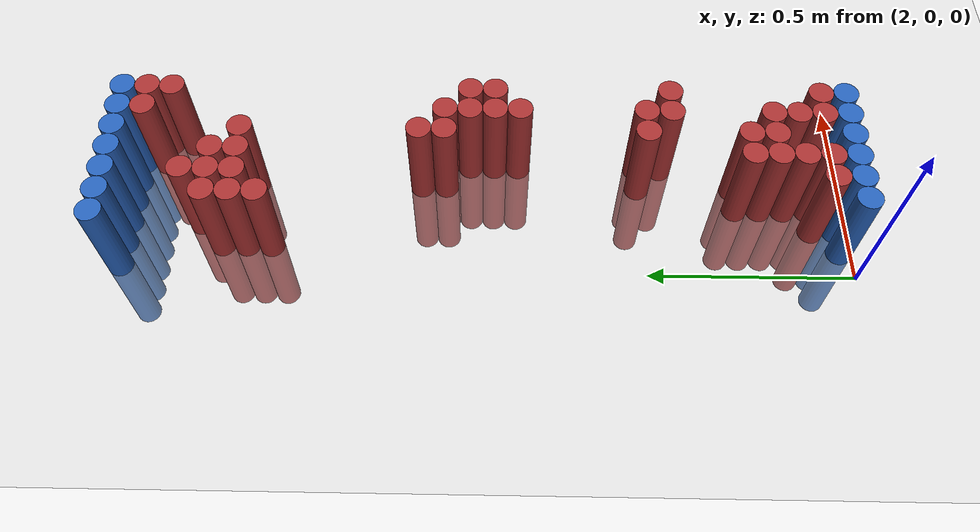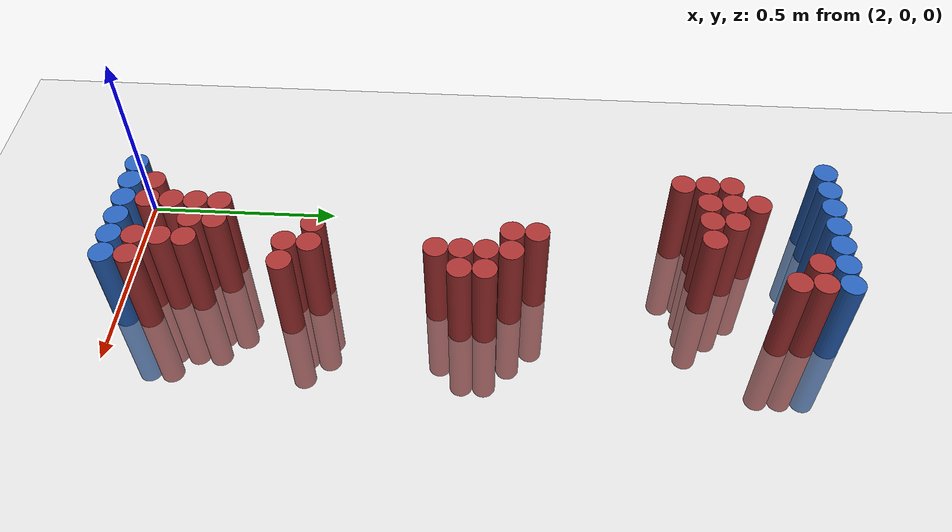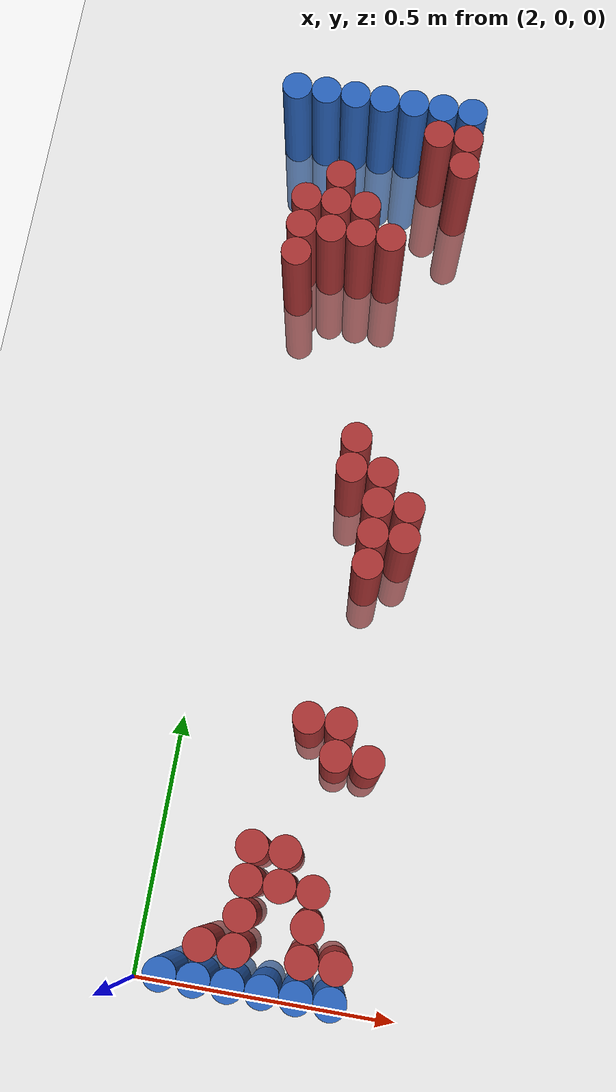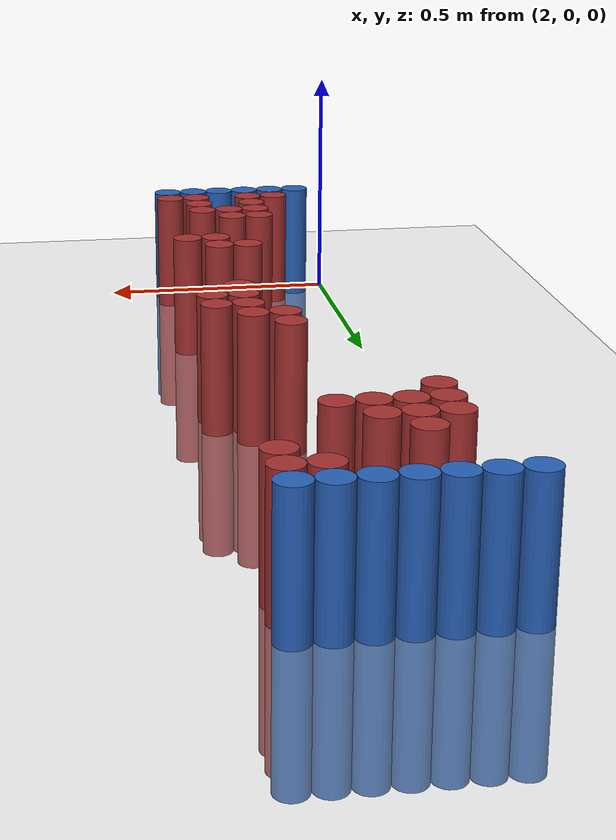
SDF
<sdf version="1.6">
 <world name="default">
  <model name="ground_plane">
   <static>1</static>
   <link name="link">
    <collision name="collision">
     <geometry><plane><normal>0 0 1</normal><size>100 100</size></plane></geometry>
     <surface><friction><ode><mu>100</mu><mu2>50</mu2></ode></friction></surface>
    </collision>
    <visual name="visual">
     <cast_shadows>0</cast_shadows>
     <geometry><plane><normal>0 0 1</normal><size>100 100</size></plane></geometry>
     <material>
      <script><uri>file://media/materials/scripts/gazebo.material</uri><name>Gazebo/Grey</name></script>
     </material>
    </visual>
   </link>
  </model>
  <model name="unit_cylinder_94">
   <static>1</static>
   <pose>2.010000 1.770000 0.000000 0.000000 0.000000 0.000000</pose>
   <link name="link">
    <inertial>
     <mass>1</mass>
     <inertia><ixx>0.145833</ixx><ixy>0</ixy><ixz>0</ixz><iyy>0.145833</iyy><iyz>0</iyz><izz>0.125</izz></inertia>
    </inertial>
    <collision name="collision">
     <geometry><cylinder><radius>0.030000</radius><length>0.5</length></cylinder></geometry>
    </collision>
    <visual name="visual">
     <geometry><cylinder><radius>0.030000</radius><length>0.5</length></cylinder></geometry>
     <material>
      <ambient>0.152000 0.379000 0.720000 1</ambient>
      <diffuse>0.152000 0.379000 0.720000 1</diffuse>
     </material>
     <material>
      <script><name>Gazebo/Grey</name><uri>file://media/materials/scripts/gazebo.material</uri></script>
     </material>
    </visual>
   </link>
  </model>
  <model name="unit_cylinder_95">
   <static>1</static>
   <pose>2.070000 1.770000 0.000000 0.000000 0.000000 0.000000</pose>
   <link name="link">
    <inertial>
     <mass>1</mass>
     <inertia><ixx>0.145833</ixx><ixy>0</ixy><ixz>0</ixz><iyy>0.145833</iyy><iyz>0</iyz><izz>0.125</izz></inertia>
    </inertial>
    <collision name="collision">
     <geometry><cylinder><radius>0.030000</radius><length>0.5</length></cylinder></geometry>
    </collision>
    <visual name="visual">
     <geometry><cylinder><radius>0.030000</radius><length>0.5</length></cylinder></geometry>
     <material>
      <ambient>0.152000 0.379000 0.720000 1</ambient>
      <diffuse>0.152000 0.379000 0.720000 1</diffuse>
     </material>
     <material>
      <script><name>Gazebo/Grey</name><uri>file://media/materials/scripts/gazebo.material</uri></script>
     </material>
    </visual>
   </link>
  </model>
  <model name="unit_cylinder_96">
   <static>1</static>
   <pose>2.130000 1.770000 0.000000 0.000000 0.000000 0.000000</pose>
   <link name="link">
    <inertial>
     <mass>1</mass>
     <inertia><ixx>0.145833</ixx><ixy>0</ixy><ixz>0</ixz><iyy>0.145833</iyy><iyz>0</iyz><izz>0.125</izz></inertia>
    </inertial>
    <collision name="collision">
     <geometry><cylinder><radius>0.030000</radius><length>0.5</length></cylinder></geometry>
    </collision>
    <visual name="visual">
     <geometry><cylinder><radius>0.030000</radius><length>0.5</length></cylinder></geometry>
     <material>
      <ambient>0.152000 0.379000 0.720000 1</ambient>
      <diffuse>0.152000 0.379000 0.720000 1</diffuse>
     </material>
     <material>
      <script><name>Gazebo/Grey</name><uri>file://media/materials/scripts/gazebo.material</uri></script>
     </material>
    </visual>
   </link>
  </model>
  <model name="unit_cylinder_97">
   <static>1</static>
   <pose>2.190000 1.770000 0.000000 0.000000 0.000000 0.000000</pose>
   <link name="link">
    <inertial>
     <mass>1</mass>
     <inertia><ixx>0.145833</ixx><ixy>0</ixy><ixz>0</ixz><iyy>0.145833</iyy><iyz>0</iyz><izz>0.125</izz></inertia>
    </inertial>
    <collision name="collision">
     <geometry><cylinder><radius>0.030000</radius><length>0.5</length></cylinder></geometry>
    </collision>
    <visual name="visual">
     <geometry><cylinder><radius>0.030000</radius><length>0.5</length></cylinder></geometry>
     <material>
      <ambient>0.152000 0.379000 0.720000 1</ambient>
      <diffuse>0.152000 0.379000 0.720000 1</diffuse>
     </material>
     <material>
      <script><name>Gazebo/Grey</name><uri>file://media/materials/scripts/gazebo.material</uri></script>
     </material>
    </visual>
   </link>
  </model>
  <model name="unit_cylinder_98">
   <static>1</static>
   <pose>2.250000 1.770000 0.000000 0.000000 0.000000 0.000000</pose>
   <link name="link">
    <inertial>
     <mass>1</mass>
     <inertia><ixx>0.145833</ixx><ixy>0</ixy><ixz>0</ixz><iyy>0.145833</iyy><iyz>0</iyz><izz>0.125</izz></inertia>
    </inertial>
    <collision name="collision">
     <geometry><cylinder><radius>0.030000</radius><length>0.5</length></cylinder></geometry>
    </collision>
    <visual name="visual">
     <geometry><cylinder><radius>0.030000</radius><length>0.5</length></cylinder></geometry>
     <material>
      <ambient>0.152000 0.379000 0.720000 1</ambient>
      <diffuse>0.152000 0.379000 0.720000 1</diffuse>
     </material>
     <material>
      <script><name>Gazebo/Grey</name><uri>file://media/materials/scripts/gazebo.material</uri></script>
     </material>
    </visual>
   </link>
  </model>
  <model name="unit_cylinder_99">
   <static>1</static>
   <pose>2.310000 1.770000 0.000000 0.000000 0.000000 0.000000</pose>
   <link name="link">
    <inertial>
     <mass>1</mass>
     <inertia><ixx>0.145833</ixx><ixy>0</ixy><ixz>0</ixz><iyy>0.145833</iyy><iyz>0</iyz><izz>0.125</izz></inertia>
    </inertial>
    <collision name="collision">
     <geometry><cylinder><radius>0.030000</radius><length>0.5</length></cylinder></geometry>
    </collision>
    <visual name="visual">
     <geometry><cylinder><radius>0.030000</radius><length>0.5</length></cylinder></geometry>
     <material>
      <ambient>0.152000 0.379000 0.720000 1</ambient>
      <diffuse>0.152000 0.379000 0.720000 1</diffuse>
     </material>
     <material>
      <script><name>Gazebo/Grey</name><uri>file://media/materials/scripts/gazebo.material</uri></script>
     </material>
    </visual>
   </link>
  </model>
  <model name="unit_cylinder_100">
   <static>1</static>
   <pose>2.370000 1.770000 0.000000 0.000000 0.000000 0.000000</pose>
   <link name="link">
    <inertial>
     <mass>1</mass>
     <inertia><ixx>0.145833</ixx><ixy>0</ixy><ixz>0</ixz><iyy>0.145833</iyy><iyz>0</iyz><izz>0.125</izz></inertia>
    </inertial>
    <collision name="collision">
     <geometry><cylinder><radius>0.030000</radius><length>0.5</length></cylinder></geometry>
    </collision>
    <visual name="visual">
     <geometry><cylinder><radius>0.030000</radius><length>0.5</length></cylinder></geometry>
     <material>
      <ambient>0.152000 0.379000 0.720000 1</ambient>
      <diffuse>0.152000 0.379000 0.720000 1</diffuse>
     </material>
     <material>
      <script><name>Gazebo/Grey</name><uri>file://media/materials/scripts/gazebo.material</uri></script>
     </material>
    </visual>
   </link>
  </model>
  <model name="unit_cylinder_125">
   <static>1</static>
   <pose>2.310000 1.710000 0.000000 0.000000 0.000000 0.000000</pose>
   <link name="link">
    <inertial>
     <mass>1</mass>
     <inertia><ixx>0.145833</ixx><ixy>0</ixy><ixz>0</ixz><iyy>0.145833</iyy><iyz>0</iyz><izz>0.125</izz></inertia>
    </inertial>
    <collision name="collision">
     <geometry><cylinder><radius>0.030000</radius><length>0.5</length></cylinder></geometry>
    </collision>
    <visual name="visual">
     <geometry><cylinder><radius>0.030000</radius><length>0.5</length></cylinder></geometry>
     <material>
      <ambient>0.648000 0.192000 0.192000 1</ambient>
      <diffuse>0.648000 0.192000 0.192000 1</diffuse>
     </material>
     <material>
      <script><name>Gazebo/Grey</name><uri>file://media/materials/scripts/gazebo.material</uri></script>
     </material>
    </visual>
   </link>
  </model>
  <model name="unit_cylinder_126">
   <static>1</static>
   <pose>2.370000 1.710000 0.000000 0.000000 0.000000 0.000000</pose>
   <link name="link">
    <inertial>
     <mass>1</mass>
     <inertia><ixx>0.145833</ixx><ixy>0</ixy><ixz>0</ixz><iyy>0.145833</iyy><iyz>0</iyz><izz>0.125</izz></inertia>
    </inertial>
    <collision name="collision">
     <geometry><cylinder><radius>0.030000</radius><length>0.5</length></cylinder></geometry>
    </collision>
    <visual name="visual">
     <geometry><cylinder><radius>0.030000</radius><length>0.5</length></cylinder></geometry>
     <material>
      <ambient>0.648000 0.192000 0.192000 1</ambient>
      <diffuse>0.648000 0.192000 0.192000 1</diffuse>
     </material>
     <material>
      <script><name>Gazebo/Grey</name><uri>file://media/materials/scripts/gazebo.material</uri></script>
     </material>
    </visual>
   </link>
  </model>
  <model name="unit_cylinder_137">
   <static>1</static>
   <pose>2.370000 1.650000 0.000000 0.000000 0.000000 0.000000</pose>
   <link name="link">
    <inertial>
     <mass>1</mass>
     <inertia><ixx>0.145833</ixx><ixy>0</ixy><ixz>0</ixz><iyy>0.145833</iyy><iyz>0</iyz><izz>0.125</izz></inertia>
    </inertial>
    <collision name="collision">
     <geometry><cylinder><radius>0.030000</radius><length>0.5</length></cylinder></geometry>
    </collision>
    <visual name="visual">
     <geometry><cylinder><radius>0.030000</radius><length>0.5</length></cylinder></geometry>
     <material>
      <ambient>0.648000 0.192000 0.192000 1</ambient>
      <diffuse>0.648000 0.192000 0.192000 1</diffuse>
     </material>
     <material>
      <script><name>Gazebo/Grey</name><uri>file://media/materials/scripts/gazebo.material</uri></script>
     </material>
    </visual>
   </link>
  </model>
  <model name="unit_cylinder_145">
   <static>1</static>
   <pose>2.130000 1.590000 0.000000 0.000000 0.000000 0.000000</pose>
   <link name="link">
    <inertial>
     <mass>1</mass>
     <inertia><ixx>0.145833</ixx><ixy>0</ixy><ixz>0</ixz><iyy>0.145833</iyy><iyz>0</iyz><izz>0.125</izz></inertia>
    </inertial>
    <collision name="collision">
     <geometry><cylinder><radius>0.030000</radius><length>0.5</length></cylinder></geometry>
    </collision>
    <visual name="visual">
     <geometry><cylinder><radius>0.030000</radius><length>0.5</length></cylinder></geometry>
     <material>
      <ambient>0.648000 0.192000 0.192000 1</ambient>
      <diffuse>0.648000 0.192000 0.192000 1</diffuse>
     </material>
     <material>
      <script><name>Gazebo/Grey</name><uri>file://media/materials/scripts/gazebo.material</uri></script>
     </material>
    </visual>
   </link>
  </model>
  <model name="unit_cylinder_159">
   <static>1</static>
   <pose>2.070000 1.530000 0.000000 0.000000 0.000000 0.000000</pose>
   <link name="link">
    <inertial>
     <mass>1</mass>
     <inertia><ixx>0.145833</ixx><ixy>0</ixy><ixz>0</ixz><iyy>0.145833</iyy><iyz>0</iyz><izz>0.125</izz></inertia>
    </inertial>
    <collision name="collision">
     <geometry><cylinder><radius>0.030000</radius><length>0.5</length></cylinder></geometry>
    </collision>
    <visual name="visual">
     <geometry><cylinder><radius>0.030000</radius><length>0.5</length></cylinder></geometry>
     <material>
      <ambient>0.648000 0.192000 0.192000 1</ambient>
      <diffuse>0.648000 0.192000 0.192000 1</diffuse>
     </material>
     <material>
      <script><name>Gazebo/Grey</name><uri>file://media/materials/scripts/gazebo.material</uri></script>
     </material>
    </visual>
   </link>
  </model>
  <model name="unit_cylinder_160">
   <static>1</static>
   <pose>2.130000 1.530000 0.000000 0.000000 0.000000 0.000000</pose>
   <link name="link">
    <inertial>
     <mass>1</mass>
     <inertia><ixx>0.145833</ixx><ixy>0</ixy><ixz>0</ixz><iyy>0.145833</iyy><iyz>0</iyz><izz>0.125</izz></inertia>
    </inertial>
    <collision name="collision">
     <geometry><cylinder><radius>0.030000</radius><length>0.5</length></cylinder></geometry>
    </collision>
    <visual name="visual">
     <geometry><cylinder><radius>0.030000</radius><length>0.5</length></cylinder></geometry>
     <material>
      <ambient>0.648000 0.192000 0.192000 1</ambient>
      <diffuse>0.648000 0.192000 0.192000 1</diffuse>
     </material>
     <material>
      <script><name>Gazebo/Grey</name><uri>file://media/materials/scripts/gazebo.material</uri></script>
     </material>
    </visual>
   </link>
  </model>
  <model name="unit_cylinder_161">
   <static>1</static>
   <pose>2.190000 1.530000 0.000000 0.000000 0.000000 0.000000</pose>
   <link name="link">
    <inertial>
     <mass>1</mass>
     <inertia><ixx>0.145833</ixx><ixy>0</ixy><ixz>0</ixz><iyy>0.145833</iyy><iyz>0</iyz><izz>0.125</izz></inertia>
    </inertial>
    <collision name="collision">
     <geometry><cylinder><radius>0.030000</radius><length>0.5</length></cylinder></geometry>
    </collision>
    <visual name="visual">
     <geometry><cylinder><radius>0.030000</radius><length>0.5</length></cylinder></geometry>
     <material>
      <ambient>0.648000 0.192000 0.192000 1</ambient>
      <diffuse>0.648000 0.192000 0.192000 1</diffuse>
     </material>
     <material>
      <script><name>Gazebo/Grey</name><uri>file://media/materials/scripts/gazebo.material</uri></script>
     </material>
    </visual>
   </link>
  </model>
  <model name="unit_cylinder_167">
   <static>1</static>
   <pose>2.070000 1.470000 0.000000 0.000000 0.000000 0.000000</pose>
   <link name="link">
    <inertial>
     <mass>1</mass>
     <inertia><ixx>0.145833</ixx><ixy>0</ixy><ixz>0</ixz><iyy>0.145833</iyy><iyz>0</iyz><izz>0.125</izz></inertia>
    </inertial>
    <collision name="collision">
     <geometry><cylinder><radius>0.030000</radius><length>0.5</length></cylinder></geometry>
    </collision>
    <visual name="visual">
     <geometry><cylinder><radius>0.030000</radius><length>0.5</length></cylinder></geometry>
     <material>
      <ambient>0.648000 0.192000 0.192000 1</ambient>
      <diffuse>0.648000 0.192000 0.192000 1</diffuse>
     </material>
     <material>
      <script><name>Gazebo/Grey</name><uri>file://media/materials/scripts/gazebo.material</uri></script>
     </material>
    </visual>
   </link>
  </model>
  <model name="unit_cylinder_168">
   <static>1</static>
   <pose>2.130000 1.470000 0.000000 0.000000 0.000000 0.000000</pose>
   <link name="link">
    <inertial>
     <mass>1</mass>
     <inertia><ixx>0.145833</ixx><ixy>0</ixy><ixz>0</ixz><iyy>0.145833</iyy><iyz>0</iyz><izz>0.125</izz></inertia>
    </inertial>
    <collision name="collision">
     <geometry><cylinder><radius>0.030000</radius><length>0.5</length></cylinder></geometry>
    </collision>
    <visual name="visual">
     <geometry><cylinder><radius>0.030000</radius><length>0.5</length></cylinder></geometry>
     <material>
      <ambient>0.648000 0.192000 0.192000 1</ambient>
      <diffuse>0.648000 0.192000 0.192000 1</diffuse>
     </material>
     <material>
      <script><name>Gazebo/Grey</name><uri>file://media/materials/scripts/gazebo.material</uri></script>
     </material>
    </visual>
   </link>
  </model>
  <model name="unit_cylinder_169">
   <static>1</static>
   <pose>2.190000 1.470000 0.000000 0.000000 0.000000 0.000000</pose>
   <link name="link">
    <inertial>
     <mass>1</mass>
     <inertia><ixx>0.145833</ixx><ixy>0</ixy><ixz>0</ixz><iyy>0.145833</iyy><iyz>0</iyz><izz>0.125</izz></inertia>
    </inertial>
    <collision name="collision">
     <geometry><cylinder><radius>0.030000</radius><length>0.5</length></cylinder></geometry>
    </collision>
    <visual name="visual">
     <geometry><cylinder><radius>0.030000</radius><length>0.5</length></cylinder></geometry>
     <material>
      <ambient>0.648000 0.192000 0.192000 1</ambient>
      <diffuse>0.648000 0.192000 0.192000 1</diffuse>
     </material>
     <material>
      <script><name>Gazebo/Grey</name><uri>file://media/materials/scripts/gazebo.material</uri></script>
     </material>
    </visual>
   </link>
  </model>
  <model name="unit_cylinder_170">
   <static>1</static>
   <pose>2.250000 1.470000 0.000000 0.000000 0.000000 0.000000</pose>
   <link name="link">
    <inertial>
     <mass>1</mass>
     <inertia><ixx>0.145833</ixx><ixy>0</ixy><ixz>0</ixz><iyy>0.145833</iyy><iyz>0</iyz><izz>0.125</izz></inertia>
    </inertial>
    <collision name="collision">
     <geometry><cylinder><radius>0.030000</radius><length>0.5</length></cylinder></geometry>
    </collision>
    <visual name="visual">
     <geometry><cylinder><radius>0.030000</radius><length>0.5</length></cylinder></geometry>
     <material>
      <ambient>0.648000 0.192000 0.192000 1</ambient>
      <diffuse>0.648000 0.192000 0.192000 1</diffuse>
     </material>
     <material>
      <script><name>Gazebo/Grey</name><uri>file://media/materials/scripts/gazebo.material</uri></script>
     </material>
    </visual>
   </link>
  </model>
  <model name="unit_cylinder_174">
   <static>1</static>
   <pose>2.070000 1.410000 0.000000 0.000000 0.000000 0.000000</pose>
   <link name="link">
    <inertial>
     <mass>1</mass>
     <inertia><ixx>0.145833</ixx><ixy>0</ixy><ixz>0</ixz><iyy>0.145833</iyy><iyz>0</iyz><izz>0.125</izz></inertia>
    </inertial>
    <collision name="collision">
     <geometry><cylinder><radius>0.030000</radius><length>0.5</length></cylinder></geometry>
    </collision>
    <visual name="visual">
     <geometry><cylinder><radius>0.030000</radius><length>0.5</length></cylinder></geometry>
     <material>
      <ambient>0.648000 0.192000 0.192000 1</ambient>
      <diffuse>0.648000 0.192000 0.192000 1</diffuse>
     </material>
     <material>
      <script><name>Gazebo/Grey</name><uri>file://media/materials/scripts/gazebo.material</uri></script>
     </material>
    </visual>
   </link>
  </model>
  <model name="unit_cylinder_193">
   <static>1</static>
   <pose>2.250000 1.050000 0.000000 0.000000 0.000000 0.000000</pose>
   <link name="link">
    <inertial>
     <mass>1</mass>
     <inertia><ixx>0.145833</ixx><ixy>0</ixy><ixz>0</ixz><iyy>0.145833</iyy><iyz>0</iyz><izz>0.125</izz></inertia>
    </inertial>
    <collision name="collision">
     <geometry><cylinder><radius>0.030000</radius><length>0.5</length></cylinder></geometry>
    </collision>
    <visual name="visual">
     <geometry><cylinder><radius>0.030000</radius><length>0.5</length></cylinder></geometry>
     <material>
      <ambient>0.648000 0.192000 0.192000 1</ambient>
      <diffuse>0.648000 0.192000 0.192000 1</diffuse>
     </material>
     <material>
      <script><name>Gazebo/Grey</name><uri>file://media/materials/scripts/gazebo.material</uri></script>
     </material>
    </visual>
   </link>
  </model>
  <model name="unit_cylinder_196">
   <static>1</static>
   <pose>2.250000 0.990000 0.000000 0.000000 0.000000 0.000000</pose>
   <link name="link">
    <inertial>
     <mass>1</mass>
     <inertia><ixx>0.145833</ixx><ixy>0</ixy><ixz>0</ixz><iyy>0.145833</iyy><iyz>0</iyz><izz>0.125</izz></inertia>
    </inertial>
    <collision name="collision">
     <geometry><cylinder><radius>0.030000</radius><length>0.5</length></cylinder></geometry>
    </collision>
    <visual name="visual">
     <geometry><cylinder><radius>0.030000</radius><length>0.5</length></cylinder></geometry>
     <material>
      <ambient>0.648000 0.192000 0.192000 1</ambient>
      <diffuse>0.648000 0.192000 0.192000 1</diffuse>
     </material>
     <material>
      <script><name>Gazebo/Grey</name><uri>file://media/materials/scripts/gazebo.material</uri></script>
     </material>
    </visual>
   </link>
  </model>
  <model name="unit_cylinder_197">
   <static>1</static>
   <pose>2.310000 0.990000 0.000000 0.000000 0.000000 0.000000</pose>
   <link name="link">
    <inertial>
     <mass>1</mass>
     <inertia><ixx>0.145833</ixx><ixy>0</ixy><ixz>0</ixz><iyy>0.145833</iyy><iyz>0</iyz><izz>0.125</izz></inertia>
    </inertial>
    <collision name="collision">
     <geometry><cylinder><radius>0.030000</radius><length>0.5</length></cylinder></geometry>
    </collision>
    <visual name="visual">
     <geometry><cylinder><radius>0.030000</radius><length>0.5</length></cylinder></geometry>
     <material>
      <ambient>0.648000 0.192000 0.192000 1</ambient>
      <diffuse>0.648000 0.192000 0.192000 1</diffuse>
     </material>
     <material>
      <script><name>Gazebo/Grey</name><uri>file://media/materials/scripts/gazebo.material</uri></script>
     </material>
    </visual>
   </link>
  </model>
  <model name="unit_cylinder_202">
   <static>1</static>
   <pose>2.310000 0.930000 0.000000 0.000000 0.000000 0.000000</pose>
   <link name="link">
    <inertial>
     <mass>1</mass>
     <inertia><ixx>0.145833</ixx><ixy>0</ixy><ixz>0</ixz><iyy>0.145833</iyy><iyz>0</iyz><izz>0.125</izz></inertia>
    </inertial>
    <collision name="collision">
     <geometry><cylinder><radius>0.030000</radius><length>0.5</length></cylinder></geometry>
    </collision>
    <visual name="visual">
     <geometry><cylinder><radius>0.030000</radius><length>0.5</length></cylinder></geometry>
     <material>
      <ambient>0.648000 0.192000 0.192000 1</ambient>
      <diffuse>0.648000 0.192000 0.192000 1</diffuse>
     </material>
     <material>
      <script><name>Gazebo/Grey</name><uri>file://media/materials/scripts/gazebo.material</uri></script>
     </material>
    </visual>
   </link>
  </model>
  <model name="unit_cylinder_203">
   <static>1</static>
   <pose>2.370000 0.930000 0.000000 0.000000 0.000000 0.000000</pose>
   <link name="link">
    <inertial>
     <mass>1</mass>
     <inertia><ixx>0.145833</ixx><ixy>0</ixy><ixz>0</ixz><iyy>0.145833</iyy><iyz>0</iyz><izz>0.125</izz></inertia>
    </inertial>
    <collision name="collision">
     <geometry><cylinder><radius>0.030000</radius><length>0.5</length></cylinder></geometry>
    </collision>
    <visual name="visual">
     <geometry><cylinder><radius>0.030000</radius><length>0.5</length></cylinder></geometry>
     <material>
      <ambient>0.648000 0.192000 0.192000 1</ambient>
      <diffuse>0.648000 0.192000 0.192000 1</diffuse>
     </material>
     <material>
      <script><name>Gazebo/Grey</name><uri>file://media/materials/scripts/gazebo.material</uri></script>
     </material>
    </visual>
   </link>
  </model>
  <model name="unit_cylinder_208">
   <static>1</static>
   <pose>2.310000 0.870000 0.000000 0.000000 0.000000 0.000000</pose>
   <link name="link">
    <inertial>
     <mass>1</mass>
     <inertia><ixx>0.145833</ixx><ixy>0</ixy><ixz>0</ixz><iyy>0.145833</iyy><iyz>0</iyz><izz>0.125</izz></inertia>
    </inertial>
    <collision name="collision">
     <geometry><cylinder><radius>0.030000</radius><length>0.5</length></cylinder></geometry>
    </collision>
    <visual name="visual">
     <geometry><cylinder><radius>0.030000</radius><length>0.5</length></cylinder></geometry>
     <material>
      <ambient>0.648000 0.192000 0.192000 1</ambient>
      <diffuse>0.648000 0.192000 0.192000 1</diffuse>
     </material>
     <material>
      <script><name>Gazebo/Grey</name><uri>file://media/materials/scripts/gazebo.material</uri></script>
     </material>
    </visual>
   </link>
  </model>
  <model name="unit_cylinder_209">
   <static>1</static>
   <pose>2.370000 0.870000 0.000000 0.000000 0.000000 0.000000</pose>
   <link name="link">
    <inertial>
     <mass>1</mass>
     <inertia><ixx>0.145833</ixx><ixy>0</ixy><ixz>0</ixz><iyy>0.145833</iyy><iyz>0</iyz><izz>0.125</izz></inertia>
    </inertial>
    <collision name="collision">
     <geometry><cylinder><radius>0.030000</radius><length>0.5</length></cylinder></geometry>
    </collision>
    <visual name="visual">
     <geometry><cylinder><radius>0.030000</radius><length>0.5</length></cylinder></geometry>
     <material>
      <ambient>0.648000 0.192000 0.192000 1</ambient>
      <diffuse>0.648000 0.192000 0.192000 1</diffuse>
     </material>
     <material>
      <script><name>Gazebo/Grey</name><uri>file://media/materials/scripts/gazebo.material</uri></script>
     </material>
    </visual>
   </link>
  </model>
  <model name="unit_cylinder_215">
   <static>1</static>
   <pose>2.310000 0.810000 0.000000 0.000000 0.000000 0.000000</pose>
   <link name="link">
    <inertial>
     <mass>1</mass>
     <inertia><ixx>0.145833</ixx><ixy>0</ixy><ixz>0</ixz><iyy>0.145833</iyy><iyz>0</iyz><izz>0.125</izz></inertia>
    </inertial>
    <collision name="collision">
     <geometry><cylinder><radius>0.030000</radius><length>0.5</length></cylinder></geometry>
    </collision>
    <visual name="visual">
     <geometry><cylinder><radius>0.030000</radius><length>0.5</length></cylinder></geometry>
     <material>
      <ambient>0.648000 0.192000 0.192000 1</ambient>
      <diffuse>0.648000 0.192000 0.192000 1</diffuse>
     </material>
     <material>
      <script><name>Gazebo/Grey</name><uri>file://media/materials/scripts/gazebo.material</uri></script>
     </material>
    </visual>
   </link>
  </model>
  <model name="unit_cylinder_250">
   <static>1</static>
   <pose>2.250000 0.510000 0.000000 0.000000 0.000000 0.000000</pose>
   <link name="link">
    <inertial>
     <mass>1</mass>
     <inertia><ixx>0.145833</ixx><ixy>0</ixy><ixz>0</ixz><iyy>0.145833</iyy><iyz>0</iyz><izz>0.125</izz></inertia>
    </inertial>
    <collision name="collision">
     <geometry><cylinder><radius>0.030000</radius><length>0.5</length></cylinder></geometry>
    </collision>
    <visual name="visual">
     <geometry><cylinder><radius>0.030000</radius><length>0.5</length></cylinder></geometry>
     <material>
      <ambient>0.648000 0.192000 0.192000 1</ambient>
      <diffuse>0.648000 0.192000 0.192000 1</diffuse>
     </material>
     <material>
      <script><name>Gazebo/Grey</name><uri>file://media/materials/scripts/gazebo.material</uri></script>
     </material>
    </visual>
   </link>
  </model>
  <model name="unit_cylinder_251">
   <static>1</static>
   <pose>2.310000 0.510000 0.000000 0.000000 0.000000 0.000000</pose>
   <link name="link">
    <inertial>
     <mass>1</mass>
     <inertia><ixx>0.145833</ixx><ixy>0</ixy><ixz>0</ixz><iyy>0.145833</iyy><iyz>0</iyz><izz>0.125</izz></inertia>
    </inertial>
    <collision name="collision">
     <geometry><cylinder><radius>0.030000</radius><length>0.5</length></cylinder></geometry>
    </collision>
    <visual name="visual">
     <geometry><cylinder><radius>0.030000</radius><length>0.5</length></cylinder></geometry>
     <material>
      <ambient>0.648000 0.192000 0.192000 1</ambient>
      <diffuse>0.648000 0.192000 0.192000 1</diffuse>
     </material>
     <material>
      <script><name>Gazebo/Grey</name><uri>file://media/materials/scripts/gazebo.material</uri></script>
     </material>
    </visual>
   </link>
  </model>
  <model name="unit_cylinder_253">
   <static>1</static>
   <pose>2.310000 0.450000 0.000000 0.000000 0.000000 0.000000</pose>
   <link name="link">
    <inertial>
     <mass>1</mass>
     <inertia><ixx>0.145833</ixx><ixy>0</ixy><ixz>0</ixz><iyy>0.145833</iyy><iyz>0</iyz><izz>0.125</izz></inertia>
    </inertial>
    <collision name="collision">
     <geometry><cylinder><radius>0.030000</radius><length>0.5</length></cylinder></geometry>
    </collision>
    <visual name="visual">
     <geometry><cylinder><radius>0.030000</radius><length>0.5</length></cylinder></geometry>
     <material>
      <ambient>0.648000 0.192000 0.192000 1</ambient>
      <diffuse>0.648000 0.192000 0.192000 1</diffuse>
     </material>
     <material>
      <script><name>Gazebo/Grey</name><uri>file://media/materials/scripts/gazebo.material</uri></script>
     </material>
    </visual>
   </link>
  </model>
  <model name="unit_cylinder_254">
   <static>1</static>
   <pose>2.370000 0.450000 0.000000 0.000000 0.000000 0.000000</pose>
   <link name="link">
    <inertial>
     <mass>1</mass>
     <inertia><ixx>0.145833</ixx><ixy>0</ixy><ixz>0</ixz><iyy>0.145833</iyy><iyz>0</iyz><izz>0.125</izz></inertia>
    </inertial>
    <collision name="collision">
     <geometry><cylinder><radius>0.030000</radius><length>0.5</length></cylinder></geometry>
    </collision>
    <visual name="visual">
     <geometry><cylinder><radius>0.030000</radius><length>0.5</length></cylinder></geometry>
     <material>
      <ambient>0.648000 0.192000 0.192000 1</ambient>
      <diffuse>0.648000 0.192000 0.192000 1</diffuse>
     </material>
     <material>
      <script><name>Gazebo/Grey</name><uri>file://media/materials/scripts/gazebo.material</uri></script>
     </material>
    </visual>
   </link>
  </model>
  <model name="unit_cylinder_263">
   <static>1</static>
   <pose>2.190000 0.270000 0.000000 0.000000 0.000000 0.000000</pose>
   <link name="link">
    <inertial>
     <mass>1</mass>
     <inertia><ixx>0.145833</ixx><ixy>0</ixy><ixz>0</ixz><iyy>0.145833</iyy><iyz>0</iyz><izz>0.125</izz></inertia>
    </inertial>
    <collision name="collision">
     <geometry><cylinder><radius>0.030000</radius><length>0.5</length></cylinder></geometry>
    </collision>
    <visual name="visual">
     <geometry><cylinder><radius>0.030000</radius><length>0.5</length></cylinder></geometry>
     <material>
      <ambient>0.648000 0.192000 0.192000 1</ambient>
      <diffuse>0.648000 0.192000 0.192000 1</diffuse>
     </material>
     <material>
      <script><name>Gazebo/Grey</name><uri>file://media/materials/scripts/gazebo.material</uri></script>
     </material>
    </visual>
   </link>
  </model>
  <model name="unit_cylinder_264">
   <static>1</static>
   <pose>2.250000 0.270000 0.000000 0.000000 0.000000 0.000000</pose>
   <link name="link">
    <inertial>
     <mass>1</mass>
     <inertia><ixx>0.145833</ixx><ixy>0</ixy><ixz>0</ixz><iyy>0.145833</iyy><iyz>0</iyz><izz>0.125</izz></inertia>
    </inertial>
    <collision name="collision">
     <geometry><cylinder><radius>0.030000</radius><length>0.5</length></cylinder></geometry>
    </collision>
    <visual name="visual">
     <geometry><cylinder><radius>0.030000</radius><length>0.5</length></cylinder></geometry>
     <material>
      <ambient>0.648000 0.192000 0.192000 1</ambient>
      <diffuse>0.648000 0.192000 0.192000 1</diffuse>
     </material>
     <material>
      <script><name>Gazebo/Grey</name><uri>file://media/materials/scripts/gazebo.material</uri></script>
     </material>
    </visual>
   </link>
  </model>
  <model name="unit_cylinder_271">
   <static>1</static>
   <pose>2.190000 0.210000 0.000000 0.000000 0.000000 0.000000</pose>
   <link name="link">
    <inertial>
     <mass>1</mass>
     <inertia><ixx>0.145833</ixx><ixy>0</ixy><ixz>0</ixz><iyy>0.145833</iyy><iyz>0</iyz><izz>0.125</izz></inertia>
    </inertial>
    <collision name="collision">
     <geometry><cylinder><radius>0.030000</radius><length>0.5</length></cylinder></geometry>
    </collision>
    <visual name="visual">
     <geometry><cylinder><radius>0.030000</radius><length>0.5</length></cylinder></geometry>
     <material>
      <ambient>0.648000 0.192000 0.192000 1</ambient>
      <diffuse>0.648000 0.192000 0.192000 1</diffuse>
     </material>
     <material>
      <script><name>Gazebo/Grey</name><uri>file://media/materials/scripts/gazebo.material</uri></script>
     </material>
    </visual>
   </link>
  </model>
  <model name="unit_cylinder_272">
   <static>1</static>
   <pose>2.250000 0.210000 0.000000 0.000000 0.000000 0.000000</pose>
   <link name="link">
    <inertial>
     <mass>1</mass>
     <inertia><ixx>0.145833</ixx><ixy>0</ixy><ixz>0</ixz><iyy>0.145833</iyy><iyz>0</iyz><izz>0.125</izz></inertia>
    </inertial>
    <collision name="collision">
     <geometry><cylinder><radius>0.030000</radius><length>0.5</length></cylinder></geometry>
    </collision>
    <visual name="visual">
     <geometry><cylinder><radius>0.030000</radius><length>0.5</length></cylinder></geometry>
     <material>
      <ambient>0.648000 0.192000 0.192000 1</ambient>
      <diffuse>0.648000 0.192000 0.192000 1</diffuse>
     </material>
     <material>
      <script><name>Gazebo/Grey</name><uri>file://media/materials/scripts/gazebo.material</uri></script>
     </material>
    </visual>
   </link>
  </model>
  <model name="unit_cylinder_273">
   <static>1</static>
   <pose>2.310000 0.210000 0.000000 0.000000 0.000000 0.000000</pose>
   <link name="link">
    <inertial>
     <mass>1</mass>
     <inertia><ixx>0.145833</ixx><ixy>0</ixy><ixz>0</ixz><iyy>0.145833</iyy><iyz>0</iyz><izz>0.125</izz></inertia>
    </inertial>
    <collision name="collision">
     <geometry><cylinder><radius>0.030000</radius><length>0.5</length></cylinder></geometry>
    </collision>
    <visual name="visual">
     <geometry><cylinder><radius>0.030000</radius><length>0.5</length></cylinder></geometry>
     <material>
      <ambient>0.648000 0.192000 0.192000 1</ambient>
      <diffuse>0.648000 0.192000 0.192000 1</diffuse>
     </material>
     <material>
      <script><name>Gazebo/Grey</name><uri>file://media/materials/scripts/gazebo.material</uri></script>
     </material>
    </visual>
   </link>
  </model>
  <model name="unit_cylinder_280">
   <static>1</static>
   <pose>2.190000 0.150000 0.000000 0.000000 0.000000 0.000000</pose>
   <link name="link">
    <inertial>
     <mass>1</mass>
     <inertia><ixx>0.145833</ixx><ixy>0</ixy><ixz>0</ixz><iyy>0.145833</iyy><iyz>0</iyz><izz>0.125</izz></inertia>
    </inertial>
    <collision name="collision">
     <geometry><cylinder><radius>0.030000</radius><length>0.5</length></cylinder></geometry>
    </collision>
    <visual name="visual">
     <geometry><cylinder><radius>0.030000</radius><length>0.5</length></cylinder></geometry>
     <material>
      <ambient>0.648000 0.192000 0.192000 1</ambient>
      <diffuse>0.648000 0.192000 0.192000 1</diffuse>
     </material>
     <material>
      <script><name>Gazebo/Grey</name><uri>file://media/materials/scripts/gazebo.material</uri></script>
     </material>
    </visual>
   </link>
  </model>
  <model name="unit_cylinder_281">
   <static>1</static>
   <pose>2.310000 0.150000 0.000000 0.000000 0.000000 0.000000</pose>
   <link name="link">
    <inertial>
     <mass>1</mass>
     <inertia><ixx>0.145833</ixx><ixy>0</ixy><ixz>0</ixz><iyy>0.145833</iyy><iyz>0</iyz><izz>0.125</izz></inertia>
    </inertial>
    <collision name="collision">
     <geometry><cylinder><radius>0.030000</radius><length>0.5</length></cylinder></geometry>
    </collision>
    <visual name="visual">
     <geometry><cylinder><radius>0.030000</radius><length>0.5</length></cylinder></geometry>
     <material>
      <ambient>0.648000 0.192000 0.192000 1</ambient>
      <diffuse>0.648000 0.192000 0.192000 1</diffuse>
     </material>
     <material>
      <script><name>Gazebo/Grey</name><uri>file://media/materials/scripts/gazebo.material</uri></script>
     </material>
    </visual>
   </link>
  </model>
  <model name="unit_cylinder_288">
   <static>1</static>
   <pose>2.130000 0.090000 0.000000 0.000000 0.000000 0.000000</pose>
   <link name="link">
    <inertial>
     <mass>1</mass>
     <inertia><ixx>0.145833</ixx><ixy>0</ixy><ixz>0</ixz><iyy>0.145833</iyy><iyz>0</iyz><izz>0.125</izz></inertia>
    </inertial>
    <collision name="collision">
     <geometry><cylinder><radius>0.030000</radius><length>0.5</length></cylinder></geometry>
    </collision>
    <visual name="visual">
     <geometry><cylinder><radius>0.030000</radius><length>0.5</length></cylinder></geometry>
     <material>
      <ambient>0.648000 0.192000 0.192000 1</ambient>
      <diffuse>0.648000 0.192000 0.192000 1</diffuse>
     </material>
     <material>
      <script><name>Gazebo/Grey</name><uri>file://media/materials/scripts/gazebo.material</uri></script>
     </material>
    </visual>
   </link>
  </model>
  <model name="unit_cylinder_289">
   <static>1</static>
   <pose>2.190000 0.090000 0.000000 0.000000 0.000000 0.000000</pose>
   <link name="link">
    <inertial>
     <mass>1</mass>
     <inertia><ixx>0.145833</ixx><ixy>0</ixy><ixz>0</ixz><iyy>0.145833</iyy><iyz>0</iyz><izz>0.125</izz></inertia>
    </inertial>
    <collision name="collision">
     <geometry><cylinder><radius>0.030000</radius><length>0.5</length></cylinder></geometry>
    </collision>
    <visual name="visual">
     <geometry><cylinder><radius>0.030000</radius><length>0.5</length></cylinder></geometry>
     <material>
      <ambient>0.648000 0.192000 0.192000 1</ambient>
      <diffuse>0.648000 0.192000 0.192000 1</diffuse>
     </material>
     <material>
      <script><name>Gazebo/Grey</name><uri>file://media/materials/scripts/gazebo.material</uri></script>
     </material>
    </visual>
   </link>
  </model>
  <model name="unit_cylinder_290">
   <static>1</static>
   <pose>2.310000 0.090000 0.000000 0.000000 0.000000 0.000000</pose>
   <link name="link">
    <inertial>
     <mass>1</mass>
     <inertia><ixx>0.145833</ixx><ixy>0</ixy><ixz>0</ixz><iyy>0.145833</iyy><iyz>0</iyz><izz>0.125</izz></inertia>
    </inertial>
    <collision name="collision">
     <geometry><cylinder><radius>0.030000</radius><length>0.5</length></cylinder></geometry>
    </collision>
    <visual name="visual">
     <geometry><cylinder><radius>0.030000</radius><length>0.5</length></cylinder></geometry>
     <material>
      <ambient>0.648000 0.192000 0.192000 1</ambient>
      <diffuse>0.648000 0.192000 0.192000 1</diffuse>
     </material>
     <material>
      <script><name>Gazebo/Grey</name><uri>file://media/materials/scripts/gazebo.material</uri></script>
     </material>
    </visual>
   </link>
  </model>
  <model name="unit_cylinder_291">
   <static>1</static>
   <pose>2.370000 0.090000 0.000000 0.000000 0.000000 0.000000</pose>
   <link name="link">
    <inertial>
     <mass>1</mass>
     <inertia><ixx>0.145833</ixx><ixy>0</ixy><ixz>0</ixz><iyy>0.145833</iyy><iyz>0</iyz><izz>0.125</izz></inertia>
    </inertial>
    <collision name="collision">
     <geometry><cylinder><radius>0.030000</radius><length>0.5</length></cylinder></geometry>
    </collision>
    <visual name="visual">
     <geometry><cylinder><radius>0.030000</radius><length>0.5</length></cylinder></geometry>
     <material>
      <ambient>0.648000 0.192000 0.192000 1</ambient>
      <diffuse>0.648000 0.192000 0.192000 1</diffuse>
     </material>
     <material>
      <script><name>Gazebo/Grey</name><uri>file://media/materials/scripts/gazebo.material</uri></script>
     </material>
    </visual>
   </link>
  </model>
  <model name="unit_cylinder_301">
   <static>1</static>
   <pose>2.070000 0.030000 0.000000 0.000000 0.000000 0.000000</pose>
   <link name="link">
    <inertial>
     <mass>1</mass>
     <inertia><ixx>0.145833</ixx><ixy>0</ixy><ixz>0</ixz><iyy>0.145833</iyy><iyz>0</iyz><izz>0.125</izz></inertia>
    </inertial>
    <collision name="collision">
     <geometry><cylinder><radius>0.030000</radius><length>0.5</length></cylinder></geometry>
    </collision>
    <visual name="visual">
     <geometry><cylinder><radius>0.030000</radius><length>0.5</length></cylinder></geometry>
     <material>
      <ambient>0.152000 0.379000 0.720000 1</ambient>
      <diffuse>0.152000 0.379000 0.720000 1</diffuse>
     </material>
     <material>
      <script><name>Gazebo/Grey</name><uri>file://media/materials/scripts/gazebo.material</uri></script>
     </material>
    </visual>
   </link>
  </model>
  <model name="unit_cylinder_302">
   <static>1</static>
   <pose>2.130000 0.030000 0.000000 0.000000 0.000000 0.000000</pose>
   <link name="link">
    <inertial>
     <mass>1</mass>
     <inertia><ixx>0.145833</ixx><ixy>0</ixy><ixz>0</ixz><iyy>0.145833</iyy><iyz>0</iyz><izz>0.125</izz></inertia>
    </inertial>
    <collision name="collision">
     <geometry><cylinder><radius>0.030000</radius><length>0.5</length></cylinder></geometry>
    </collision>
    <visual name="visual">
     <geometry><cylinder><radius>0.030000</radius><length>0.5</length></cylinder></geometry>
     <material>
      <ambient>0.152000 0.379000 0.720000 1</ambient>
      <diffuse>0.152000 0.379000 0.720000 1</diffuse>
     </material>
     <material>
      <script><name>Gazebo/Grey</name><uri>file://media/materials/scripts/gazebo.material</uri></script>
     </material>
    </visual>
   </link>
  </model>
  <model name="unit_cylinder_303">
   <static>1</static>
   <pose>2.190000 0.030000 0.000000 0.000000 0.000000 0.000000</pose>
   <link name="link">
    <inertial>
     <mass>1</mass>
     <inertia><ixx>0.145833</ixx><ixy>0</ixy><ixz>0</ixz><iyy>0.145833</iyy><iyz>0</iyz><izz>0.125</izz></inertia>
    </inertial>
    <collision name="collision">
     <geometry><cylinder><radius>0.030000</radius><length>0.5</length></cylinder></geometry>
    </collision>
    <visual name="visual">
     <geometry><cylinder><radius>0.030000</radius><length>0.5</length></cylinder></geometry>
     <material>
      <ambient>0.152000 0.379000 0.720000 1</ambient>
      <diffuse>0.152000 0.379000 0.720000 1</diffuse>
     </material>
     <material>
      <script><name>Gazebo/Grey</name><uri>file://media/materials/scripts/gazebo.material</uri></script>
     </material>
    </visual>
   </link>
  </model>
  <model name="unit_cylinder_304">
   <static>1</static>
   <pose>2.250000 0.030000 0.000000 0.000000 0.000000 0.000000</pose>
   <link name="link">
    <inertial>
     <mass>1</mass>
     <inertia><ixx>0.145833</ixx><ixy>0</ixy><ixz>0</ixz><iyy>0.145833</iyy><iyz>0</iyz><izz>0.125</izz></inertia>
    </inertial>
    <collision name="collision">
     <geometry><cylinder><radius>0.030000</radius><length>0.5</length></cylinder></geometry>
    </collision>
    <visual name="visual">
     <geometry><cylinder><radius>0.030000</radius><length>0.5</length></cylinder></geometry>
     <material>
      <ambient>0.152000 0.379000 0.720000 1</ambient>
      <diffuse>0.152000 0.379000 0.720000 1</diffuse>
     </material>
     <material>
      <script><name>Gazebo/Grey</name><uri>file://media/materials/scripts/gazebo.material</uri></script>
     </material>
    </visual>
   </link>
  </model>
  <model name="unit_cylinder_305">
   <static>1</static>
   <pose>2.310000 0.030000 0.000000 0.000000 0.000000 0.000000</pose>
   <link name="link">
    <inertial>
     <mass>1</mass>
     <inertia><ixx>0.145833</ixx><ixy>0</ixy><ixz>0</ixz><iyy>0.145833</iyy><iyz>0</iyz><izz>0.125</izz></inertia>
    </inertial>
    <collision name="collision">
     <geometry><cylinder><radius>0.030000</radius><length>0.5</length></cylinder></geometry>
    </collision>
    <visual name="visual">
     <geometry><cylinder><radius>0.030000</radius><length>0.5</length></cylinder></geometry>
     <material>
      <ambient>0.152000 0.379000 0.720000 1</ambient>
      <diffuse>0.152000 0.379000 0.720000 1</diffuse>
     </material>
     <material>
      <script><name>Gazebo/Grey</name><uri>file://media/materials/scripts/gazebo.material</uri></script>
     </material>
    </visual>
   </link>
  </model>
  <model name="unit_cylinder_306">
   <static>1</static>
   <pose>2.370000 0.030000 0.000000 0.000000 0.000000 0.000000</pose>
   <link name="link">
    <inertial>
     <mass>1</mass>
     <inertia><ixx>0.145833</ixx><ixy>0</ixy><ixz>0</ixz><iyy>0.145833</iyy><iyz>0</iyz><izz>0.125</izz></inertia>
    </inertial>
    <collision name="collision">
     <geometry><cylinder><radius>0.030000</radius><length>0.5</length></cylinder></geometry>
    </collision>
    <visual name="visual">
     <geometry><cylinder><radius>0.030000</radius><length>0.5</length></cylinder></geometry>
     <material>
      <ambient>0.152000 0.379000 0.720000 1</ambient>
      <diffuse>0.152000 0.379000 0.720000 1</diffuse>
     </material>
     <material>
      <script><name>Gazebo/Grey</name><uri>file://media/materials/scripts/gazebo.material</uri></script>
     </material>
    </visual>
   </link>
  </model>
 </world>
</sdf>
